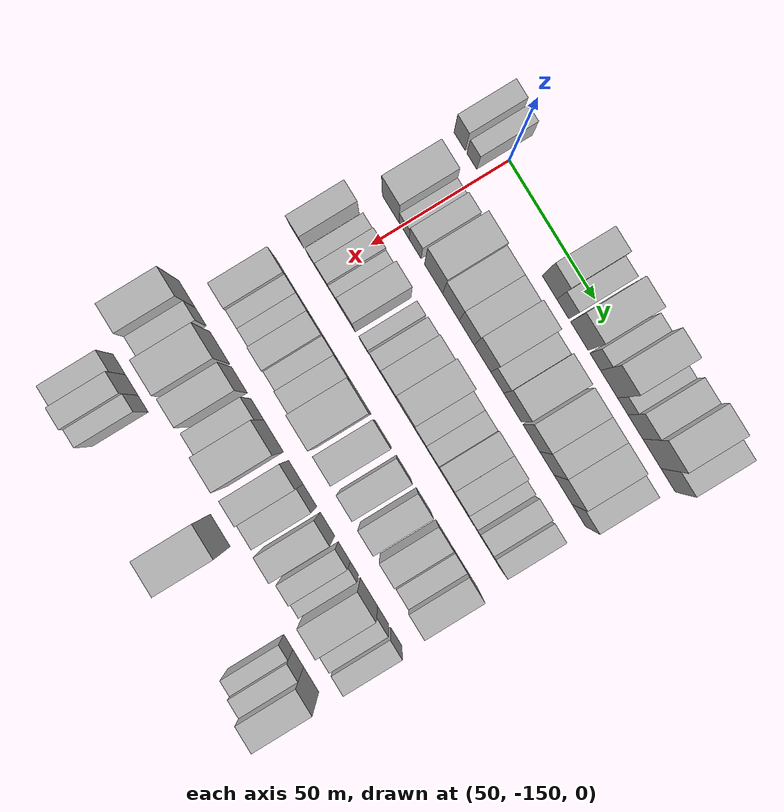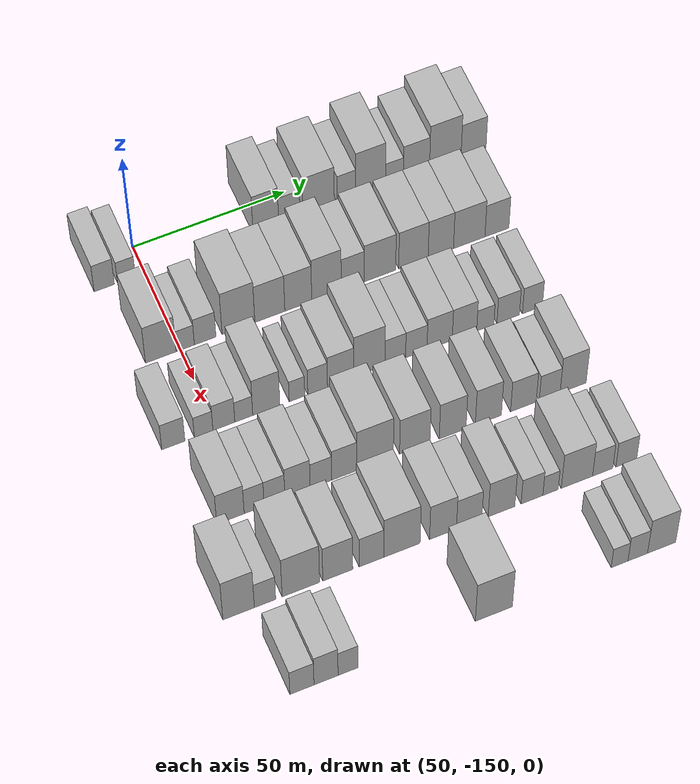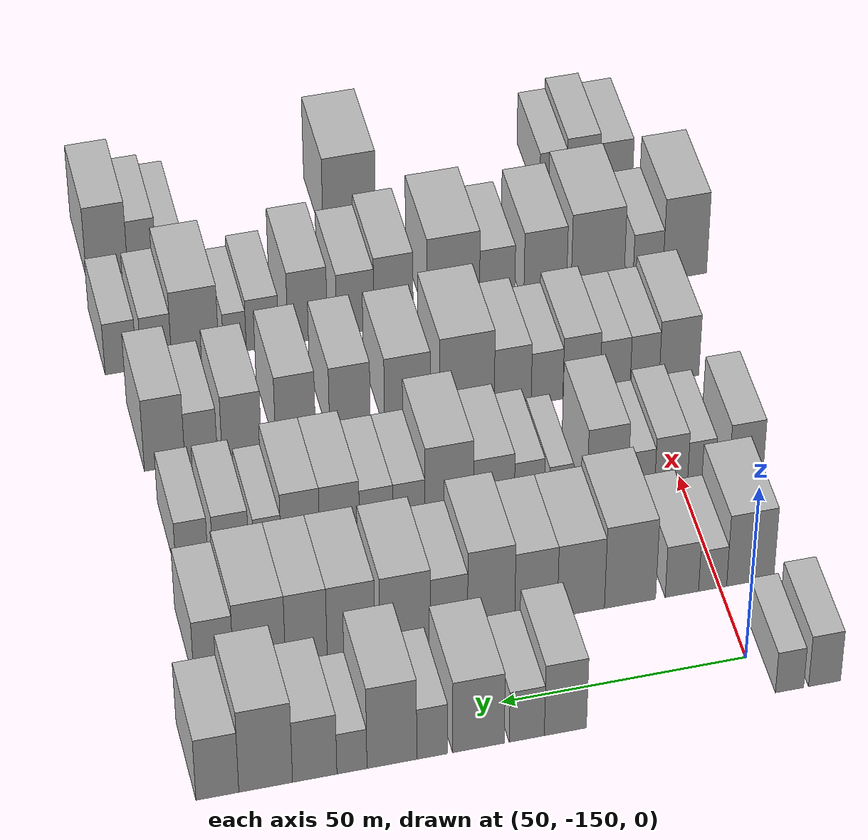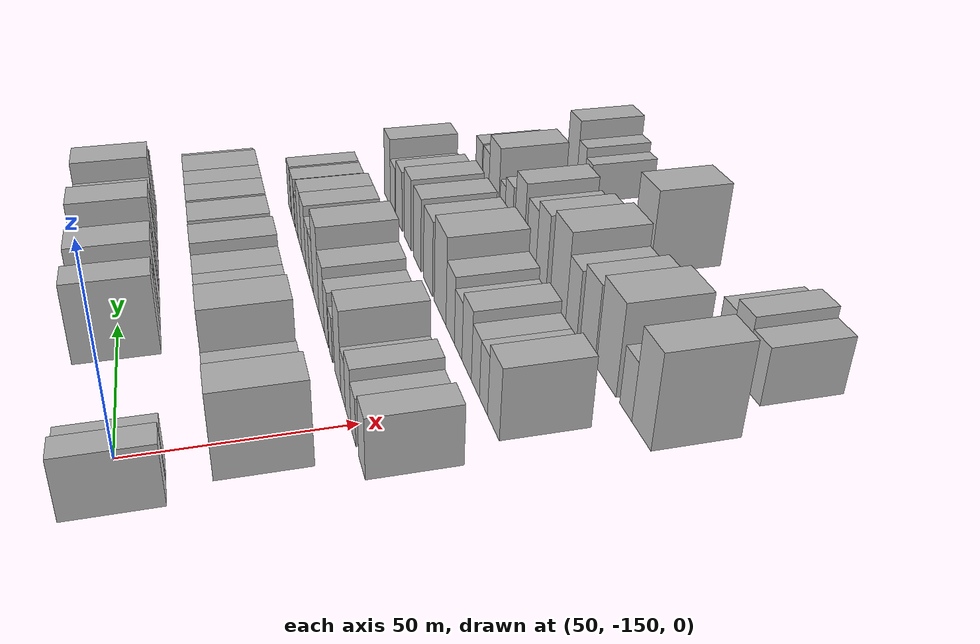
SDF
<sdf version="1.6">
 <world name="default">
  <model name="building_37">
   <static>1</static>
   <pose>50.0000 -163.1024 0 0.000000 0.000000 0.000000</pose>
   <link name="link">
    <pose>0 0 7.50 0 0 0</pose>
    <collision name="collision"><geometry><box><size>20.0000 6.5615 15.0000</size></box></geometry></collision>
    <visual name="visual">
     <cast_shadows>0</cast_shadows>
     <geometry><box><size>20.0000 6.5615 15.0000</size></box></geometry>
     <material>
      <script>
       <uri>model://HANNAS_wall/materials/scripts</uri>
       <uri>model://HANNAS_wall/materials/textures</uri>
       <name>vrc/HANNAS_wall</name>
      </script>
     </material>
    </visual>
   </link>
  </model>
  <model name="building_38">
   <static>1</static>
   <pose>50.0000 -155.9219 0 0.000000 0.000000 0.000000</pose>
   <link name="link">
    <pose>0 0 6.00 0 0 0</pose>
    <collision name="collision"><geometry><box><size>20.0000 5.7995 12.0000</size></box></geometry></collision>
    <visual name="visual">
     <cast_shadows>0</cast_shadows>
     <geometry><box><size>20.0000 5.7995 12.0000</size></box></geometry>
     <material>
      <script>
       <uri>model://HANNAS_wall/materials/scripts</uri>
       <uri>model://HANNAS_wall/materials/textures</uri>
       <name>vrc/HANNAS_wall</name>
      </script>
     </material>
    </visual>
   </link>
  </model>
  <model name="building_39">
   <static>1</static>
   <pose>50.0000 -110.2838 0 0.000000 0.000000 0.000000</pose>
   <link name="link">
    <pose>0 0 10.50 0 0 0</pose>
    <collision name="collision"><geometry><box><size>20.0000 8.4922 21.0000</size></box></geometry></collision>
    <visual name="visual">
     <cast_shadows>0</cast_shadows>
     <geometry><box><size>20.0000 8.4922 21.0000</size></box></geometry>
     <material>
      <script>
       <uri>model://HANNAS_wall/materials/scripts</uri>
       <uri>model://HANNAS_wall/materials/textures</uri>
       <name>vrc/HANNAS_wall</name>
      </script>
     </material>
    </visual>
   </link>
  </model>
  <model name="building_40">
   <static>1</static>
   <pose>50.0000 -102.5081 0 0.000000 0.000000 0.000000</pose>
   <link name="link">
    <pose>0 0 7.50 0 0 0</pose>
    <collision name="collision"><geometry><box><size>20.0000 7.0591 15.0000</size></box></geometry></collision>
    <visual name="visual">
     <cast_shadows>0</cast_shadows>
     <geometry><box><size>20.0000 7.0591 15.0000</size></box></geometry>
     <material>
      <script>
       <uri>model://HANNAS_wall/materials/scripts</uri>
       <uri>model://HANNAS_wall/materials/textures</uri>
       <name>vrc/HANNAS_wall</name>
      </script>
     </material>
    </visual>
   </link>
  </model>
  <model name="building_41">
   <static>1</static>
   <pose>50.0000 -92.8008 0 0.000000 0.000000 0.000000</pose>
   <link name="link">
    <pose>0 0 10.50 0 0 0</pose>
    <collision name="collision"><geometry><box><size>20.0000 10.3556 21.0000</size></box></geometry></collision>
    <visual name="visual">
     <cast_shadows>0</cast_shadows>
     <geometry><box><size>20.0000 10.3556 21.0000</size></box></geometry>
     <material>
      <script>
       <uri>model://HANNAS_wall/materials/scripts</uri>
       <uri>model://HANNAS_wall/materials/textures</uri>
       <name>vrc/HANNAS_wall</name>
      </script>
     </material>
    </visual>
   </link>
  </model>
  <model name="building_42">
   <static>1</static>
   <pose>50.0000 -83.5438 0 0.000000 0.000000 0.000000</pose>
   <link name="link">
    <pose>0 0 7.50 0 0 0</pose>
    <collision name="collision"><geometry><box><size>20.0000 6.1586 15.0000</size></box></geometry></collision>
    <visual name="visual">
     <cast_shadows>0</cast_shadows>
     <geometry><box><size>20.0000 6.1586 15.0000</size></box></geometry>
     <material>
      <script>
       <uri>model://HANNAS_wall/materials/scripts</uri>
       <uri>model://HANNAS_wall/materials/textures</uri>
       <name>vrc/HANNAS_wall</name>
      </script>
     </material>
    </visual>
   </link>
  </model>
  <model name="building_43">
   <static>1</static>
   <pose>50.0000 -75.5040 0 0.000000 0.000000 0.000000</pose>
   <link name="link">
    <pose>0 0 12.00 0 0 0</pose>
    <collision name="collision"><geometry><box><size>20.0000 9.9208 24.0000</size></box></geometry></collision>
    <visual name="visual">
     <cast_shadows>0</cast_shadows>
     <geometry><box><size>20.0000 9.9208 24.0000</size></box></geometry>
     <material>
      <script>
       <uri>model://HANNAS_wall/materials/scripts</uri>
       <uri>model://HANNAS_wall/materials/textures</uri>
       <name>vrc/HANNAS_wall</name>
      </script>
     </material>
    </visual>
   </link>
  </model>
  <model name="building_44">
   <static>1</static>
   <pose>50.0000 -67.5569 0 0.000000 0.000000 0.000000</pose>
   <link name="link">
    <pose>0 0 6.00 0 0 0</pose>
    <collision name="collision"><geometry><box><size>20.0000 5.9735 12.0000</size></box></geometry></collision>
    <visual name="visual">
     <cast_shadows>0</cast_shadows>
     <geometry><box><size>20.0000 5.9735 12.0000</size></box></geometry>
     <material>
      <script>
       <uri>model://HANNAS_wall/materials/scripts</uri>
       <uri>model://HANNAS_wall/materials/textures</uri>
       <name>vrc/HANNAS_wall</name>
      </script>
     </material>
    </visual>
   </link>
  </model>
  <model name="building_45">
   <static>1</static>
   <pose>50.0000 -60.1792 0 0.000000 0.000000 0.000000</pose>
   <link name="link">
    <pose>0 0 9.00 0 0 0</pose>
    <collision name="collision"><geometry><box><size>20.0000 8.7819 18.0000</size></box></geometry></collision>
    <visual name="visual">
     <cast_shadows>0</cast_shadows>
     <geometry><box><size>20.0000 8.7819 18.0000</size></box></geometry>
     <material>
      <script>
       <uri>model://HANNAS_wall/materials/scripts</uri>
       <uri>model://HANNAS_wall/materials/textures</uri>
       <name>vrc/HANNAS_wall</name>
      </script>
     </material>
    </visual>
   </link>
  </model>
  <model name="building_46">
   <static>1</static>
   <pose>50.0000 -50.4802 0 0.000000 0.000000 0.000000</pose>
   <link name="link">
    <pose>0 0 12.00 0 0 0</pose>
    <collision name="collision"><geometry><box><size>20.0000 10.6159 24.0000</size></box></geometry></collision>
    <visual name="visual">
     <cast_shadows>0</cast_shadows>
     <geometry><box><size>20.0000 10.6159 24.0000</size></box></geometry>
     <material>
      <script>
       <uri>model://HANNAS_wall/materials/scripts</uri>
       <uri>model://HANNAS_wall/materials/textures</uri>
       <name>vrc/HANNAS_wall</name>
      </script>
     </material>
    </visual>
   </link>
  </model>
  <model name="building_47">
   <static>1</static>
   <pose>50.0000 -40.9504 0 0.000000 0.000000 0.000000</pose>
   <link name="link">
    <pose>0 0 9.00 0 0 0</pose>
    <collision name="collision"><geometry><box><size>20.0000 8.4437 18.0000</size></box></geometry></collision>
    <visual name="visual">
     <cast_shadows>0</cast_shadows>
     <geometry><box><size>20.0000 8.4437 18.0000</size></box></geometry>
     <material>
      <script>
       <uri>model://HANNAS_wall/materials/scripts</uri>
       <uri>model://HANNAS_wall/materials/textures</uri>
       <name>vrc/HANNAS_wall</name>
      </script>
     </material>
    </visual>
   </link>
  </model>
  <model name="building_147">
   <static>1</static>
   <pose>79.0000 -156.2502 0 0.000000 0.000000 0.000000</pose>
   <link name="link">
    <pose>0 0 10.50 0 0 0</pose>
    <collision name="collision"><geometry><box><size>20.0000 9.8733 21.0000</size></box></geometry></collision>
    <visual name="visual">
     <cast_shadows>0</cast_shadows>
     <geometry><box><size>20.0000 9.8733 21.0000</size></box></geometry>
     <material>
      <script>
       <uri>model://HANNAS_wall/materials/scripts</uri>
       <uri>model://HANNAS_wall/materials/textures</uri>
       <name>vrc/HANNAS_wall</name>
      </script>
     </material>
    </visual>
   </link>
  </model>
  <model name="building_148">
   <static>1</static>
   <pose>79.0000 -148.3791 0 0.000000 0.000000 0.000000</pose>
   <link name="link">
    <pose>0 0 6.00 0 0 0</pose>
    <collision name="collision"><geometry><box><size>20.0000 5.8688 12.0000</size></box></geometry></collision>
    <visual name="visual">
     <cast_shadows>0</cast_shadows>
     <geometry><box><size>20.0000 5.8688 12.0000</size></box></geometry>
     <material>
      <script>
       <uri>model://HANNAS_wall/materials/scripts</uri>
       <uri>model://HANNAS_wall/materials/textures</uri>
       <name>vrc/HANNAS_wall</name>
      </script>
     </material>
    </visual>
   </link>
  </model>
  <model name="building_149">
   <static>1</static>
   <pose>79.0000 -141.9676 0 0.000000 0.000000 0.000000</pose>
   <link name="link">
    <pose>0 0 7.50 0 0 0</pose>
    <collision name="collision"><geometry><box><size>20.0000 6.9543 15.0000</size></box></geometry></collision>
    <visual name="visual">
     <cast_shadows>0</cast_shadows>
     <geometry><box><size>20.0000 6.9543 15.0000</size></box></geometry>
     <material>
      <script>
       <uri>model://HANNAS_wall/materials/scripts</uri>
       <uri>model://HANNAS_wall/materials/textures</uri>
       <name>vrc/HANNAS_wall</name>
      </script>
     </material>
    </visual>
   </link>
  </model>
  <model name="building_150">
   <static>1</static>
   <pose>79.0000 -131.1837 0 0.000000 0.000000 0.000000</pose>
   <link name="link">
    <pose>0 0 12.00 0 0 0</pose>
    <collision name="collision"><geometry><box><size>20.0000 10.6135 24.0000</size></box></geometry></collision>
    <visual name="visual">
     <cast_shadows>0</cast_shadows>
     <geometry><box><size>20.0000 10.6135 24.0000</size></box></geometry>
     <material>
      <script>
       <uri>model://HANNAS_wall/materials/scripts</uri>
       <uri>model://HANNAS_wall/materials/textures</uri>
       <name>vrc/HANNAS_wall</name>
      </script>
     </material>
    </visual>
   </link>
  </model>
  <model name="building_151">
   <static>1</static>
   <pose>79.0000 -120.9913 0 0.000000 0.000000 0.000000</pose>
   <link name="link">
    <pose>0 0 10.50 0 0 0</pose>
    <collision name="collision"><geometry><box><size>20.0000 9.7712 21.0000</size></box></geometry></collision>
    <visual name="visual">
     <cast_shadows>0</cast_shadows>
     <geometry><box><size>20.0000 9.7712 21.0000</size></box></geometry>
     <material>
      <script>
       <uri>model://HANNAS_wall/materials/scripts</uri>
       <uri>model://HANNAS_wall/materials/textures</uri>
       <name>vrc/HANNAS_wall</name>
      </script>
     </material>
    </visual>
   </link>
  </model>
  <model name="building_152">
   <static>1</static>
   <pose>79.0000 -111.7126 0 0.000000 0.000000 0.000000</pose>
   <link name="link">
    <pose>0 0 10.50 0 0 0</pose>
    <collision name="collision"><geometry><box><size>20.0000 8.7863 21.0000</size></box></geometry></collision>
    <visual name="visual">
     <cast_shadows>0</cast_shadows>
     <geometry><box><size>20.0000 8.7863 21.0000</size></box></geometry>
     <material>
      <script>
       <uri>model://HANNAS_wall/materials/scripts</uri>
       <uri>model://HANNAS_wall/materials/textures</uri>
       <name>vrc/HANNAS_wall</name>
      </script>
     </material>
    </visual>
   </link>
  </model>
  <model name="building_153">
   <static>1</static>
   <pose>79.0000 -102.4825 0 0.000000 0.000000 0.000000</pose>
   <link name="link">
    <pose>0 0 12.00 0 0 0</pose>
    <collision name="collision"><geometry><box><size>20.0000 9.6740 24.0000</size></box></geometry></collision>
    <visual name="visual">
     <cast_shadows>0</cast_shadows>
     <geometry><box><size>20.0000 9.6740 24.0000</size></box></geometry>
     <material>
      <script>
       <uri>model://HANNAS_wall/materials/scripts</uri>
       <uri>model://HANNAS_wall/materials/textures</uri>
       <name>vrc/HANNAS_wall</name>
      </script>
     </material>
    </visual>
   </link>
  </model>
  <model name="building_154">
   <static>1</static>
   <pose>79.0000 -93.8683 0 0.000000 0.000000 0.000000</pose>
   <link name="link">
    <pose>0 0 9.00 0 0 0</pose>
    <collision name="collision"><geometry><box><size>20.0000 7.5544 18.0000</size></box></geometry></collision>
    <visual name="visual">
     <cast_shadows>0</cast_shadows>
     <geometry><box><size>20.0000 7.5544 18.0000</size></box></geometry>
     <material>
      <script>
       <uri>model://HANNAS_wall/materials/scripts</uri>
       <uri>model://HANNAS_wall/materials/textures</uri>
       <name>vrc/HANNAS_wall</name>
      </script>
     </material>
    </visual>
   </link>
  </model>
  <model name="building_155">
   <static>1</static>
   <pose>79.0000 -84.9221 0 0.000000 0.000000 0.000000</pose>
   <link name="link">
    <pose>0 0 10.50 0 0 0</pose>
    <collision name="collision"><geometry><box><size>20.0000 10.3380 21.0000</size></box></geometry></collision>
    <visual name="visual">
     <cast_shadows>0</cast_shadows>
     <geometry><box><size>20.0000 10.3380 21.0000</size></box></geometry>
     <material>
      <script>
       <uri>model://HANNAS_wall/materials/scripts</uri>
       <uri>model://HANNAS_wall/materials/textures</uri>
       <name>vrc/HANNAS_wall</name>
      </script>
     </material>
    </visual>
   </link>
  </model>
  <model name="building_156">
   <static>1</static>
   <pose>79.0000 -73.8967 0 0.000000 0.000000 0.000000</pose>
   <link name="link">
    <pose>0 0 10.50 0 0 0</pose>
    <collision name="collision"><geometry><box><size>20.0000 9.7129 21.0000</size></box></geometry></collision>
    <visual name="visual">
     <cast_shadows>0</cast_shadows>
     <geometry><box><size>20.0000 9.7129 21.0000</size></box></geometry>
     <material>
      <script>
       <uri>model://HANNAS_wall/materials/scripts</uri>
       <uri>model://HANNAS_wall/materials/textures</uri>
       <name>vrc/HANNAS_wall</name>
      </script>
     </material>
    </visual>
   </link>
  </model>
  <model name="building_157">
   <static>1</static>
   <pose>79.0000 -64.8223 0 0.000000 0.000000 0.000000</pose>
   <link name="link">
    <pose>0 0 10.50 0 0 0</pose>
    <collision name="collision"><geometry><box><size>20.0000 8.4360 21.0000</size></box></geometry></collision>
    <visual name="visual">
     <cast_shadows>0</cast_shadows>
     <geometry><box><size>20.0000 8.4360 21.0000</size></box></geometry>
     <material>
      <script>
       <uri>model://HANNAS_wall/materials/scripts</uri>
       <uri>model://HANNAS_wall/materials/textures</uri>
       <name>vrc/HANNAS_wall</name>
      </script>
     </material>
    </visual>
   </link>
  </model>
  <model name="building_158">
   <static>1</static>
   <pose>79.0000 -55.3665 0 0.000000 0.000000 0.000000</pose>
   <link name="link">
    <pose>0 0 10.50 0 0 0</pose>
    <collision name="collision"><geometry><box><size>20.0000 10.4754 21.0000</size></box></geometry></collision>
    <visual name="visual">
     <cast_shadows>0</cast_shadows>
     <geometry><box><size>20.0000 10.4754 21.0000</size></box></geometry>
     <material>
      <script>
       <uri>model://HANNAS_wall/materials/scripts</uri>
       <uri>model://HANNAS_wall/materials/textures</uri>
       <name>vrc/HANNAS_wall</name>
      </script>
     </material>
    </visual>
   </link>
  </model>
  <model name="building_159">
   <static>1</static>
   <pose>79.0000 -46.1332 0 0.000000 0.000000 0.000000</pose>
   <link name="link">
    <pose>0 0 9.00 0 0 0</pose>
    <collision name="collision"><geometry><box><size>20.0000 7.9913 18.0000</size></box></geometry></collision>
    <visual name="visual">
     <cast_shadows>0</cast_shadows>
     <geometry><box><size>20.0000 7.9913 18.0000</size></box></geometry>
     <material>
      <script>
       <uri>model://HANNAS_wall/materials/scripts</uri>
       <uri>model://HANNAS_wall/materials/textures</uri>
       <name>vrc/HANNAS_wall</name>
      </script>
     </material>
    </visual>
   </link>
  </model>
  <model name="building_255">
   <static>1</static>
   <pose>108.0000 -163.7777 0 0.000000 0.000000 0.000000</pose>
   <link name="link">
    <pose>0 0 7.50 0 0 0</pose>
    <collision name="collision"><geometry><box><size>20.0000 7.3350 15.0000</size></box></geometry></collision>
    <visual name="visual">
     <cast_shadows>0</cast_shadows>
     <geometry><box><size>20.0000 7.3350 15.0000</size></box></geometry>
     <material>
      <script>
       <uri>model://HANNAS_wall/materials/scripts</uri>
       <uri>model://HANNAS_wall/materials/textures</uri>
       <name>vrc/HANNAS_wall</name>
      </script>
     </material>
    </visual>
   </link>
  </model>
  <model name="building_256">
   <static>1</static>
   <pose>108.0000 -154.1662 0 0.000000 0.000000 0.000000</pose>
   <link name="link">
    <pose>0 0 6.00 0 0 0</pose>
    <collision name="collision"><geometry><box><size>20.0000 5.8882 12.0000</size></box></geometry></collision>
    <visual name="visual">
     <cast_shadows>0</cast_shadows>
     <geometry><box><size>20.0000 5.8882 12.0000</size></box></geometry>
     <material>
      <script>
       <uri>model://HANNAS_wall/materials/scripts</uri>
       <uri>model://HANNAS_wall/materials/textures</uri>
       <name>vrc/HANNAS_wall</name>
      </script>
     </material>
    </visual>
   </link>
  </model>
  <model name="building_257">
   <static>1</static>
   <pose>108.0000 -147.7206 0 0.000000 0.000000 0.000000</pose>
   <link name="link">
    <pose>0 0 7.50 0 0 0</pose>
    <collision name="collision"><geometry><box><size>20.0000 7.0030 15.0000</size></box></geometry></collision>
    <visual name="visual">
     <cast_shadows>0</cast_shadows>
     <geometry><box><size>20.0000 7.0030 15.0000</size></box></geometry>
     <material>
      <script>
       <uri>model://HANNAS_wall/materials/scripts</uri>
       <uri>model://HANNAS_wall/materials/textures</uri>
       <name>vrc/HANNAS_wall</name>
      </script>
     </material>
    </visual>
   </link>
  </model>
  <model name="building_258">
   <static>1</static>
   <pose>108.0000 -141.3519 0 0.000000 0.000000 0.000000</pose>
   <link name="link">
    <pose>0 0 6.00 0 0 0</pose>
    <collision name="collision"><geometry><box><size>20.0000 5.7342 12.0000</size></box></geometry></collision>
    <visual name="visual">
     <cast_shadows>0</cast_shadows>
     <geometry><box><size>20.0000 5.7342 12.0000</size></box></geometry>
     <material>
      <script>
       <uri>model://HANNAS_wall/materials/scripts</uri>
       <uri>model://HANNAS_wall/materials/textures</uri>
       <name>vrc/HANNAS_wall</name>
      </script>
     </material>
    </visual>
   </link>
  </model>
  <model name="building_259">
   <static>1</static>
   <pose>108.0000 -134.1454 0 0.000000 0.000000 0.000000</pose>
   <link name="link">
    <pose>0 0 10.50 0 0 0</pose>
    <collision name="collision"><geometry><box><size>20.0000 8.6790 21.0000</size></box></geometry></collision>
    <visual name="visual">
     <cast_shadows>0</cast_shadows>
     <geometry><box><size>20.0000 8.6790 21.0000</size></box></geometry>
     <material>
      <script>
       <uri>model://HANNAS_wall/materials/scripts</uri>
       <uri>model://HANNAS_wall/materials/textures</uri>
       <name>vrc/HANNAS_wall</name>
      </script>
     </material>
    </visual>
   </link>
  </model>
  <model name="building_260">
   <static>1</static>
   <pose>108.0000 -124.3145 0 0.000000 0.000000 0.000000</pose>
   <link name="link">
    <pose>0 0 6.00 0 0 0</pose>
    <collision name="collision"><geometry><box><size>20.0000 4.9828 12.0000</size></box></geometry></collision>
    <visual name="visual">
     <cast_shadows>0</cast_shadows>
     <geometry><box><size>20.0000 4.9828 12.0000</size></box></geometry>
     <material>
      <script>
       <uri>model://HANNAS_wall/materials/scripts</uri>
       <uri>model://HANNAS_wall/materials/textures</uri>
       <name>vrc/HANNAS_wall</name>
      </script>
     </material>
    </visual>
   </link>
  </model>
  <model name="building_261">
   <static>1</static>
   <pose>108.0000 -117.6529 0 0.000000 0.000000 0.000000</pose>
   <link name="link">
    <pose>0 0 7.50 0 0 0</pose>
    <collision name="collision"><geometry><box><size>20.0000 6.3403 15.0000</size></box></geometry></collision>
    <visual name="visual">
     <cast_shadows>0</cast_shadows>
     <geometry><box><size>20.0000 6.3403 15.0000</size></box></geometry>
     <material>
      <script>
       <uri>model://HANNAS_wall/materials/scripts</uri>
       <uri>model://HANNAS_wall/materials/textures</uri>
       <name>vrc/HANNAS_wall</name>
      </script>
     </material>
    </visual>
   </link>
  </model>
  <model name="building_262">
   <static>1</static>
   <pose>108.0000 -110.2020 0 0.000000 0.000000 0.000000</pose>
   <link name="link">
    <pose>0 0 9.00 0 0 0</pose>
    <collision name="collision"><geometry><box><size>20.0000 8.5617 18.0000</size></box></geometry></collision>
    <visual name="visual">
     <cast_shadows>0</cast_shadows>
     <geometry><box><size>20.0000 8.5617 18.0000</size></box></geometry>
     <material>
      <script>
       <uri>model://HANNAS_wall/materials/scripts</uri>
       <uri>model://HANNAS_wall/materials/textures</uri>
       <name>vrc/HANNAS_wall</name>
      </script>
     </material>
    </visual>
   </link>
  </model>
  <model name="building_263">
   <static>1</static>
   <pose>108.0000 -100.8691 0 0.000000 0.000000 0.000000</pose>
   <link name="link">
    <pose>0 0 12.00 0 0 0</pose>
    <collision name="collision"><geometry><box><size>20.0000 10.1041 24.0000</size></box></geometry></collision>
    <visual name="visual">
     <cast_shadows>0</cast_shadows>
     <geometry><box><size>20.0000 10.1041 24.0000</size></box></geometry>
     <material>
      <script>
       <uri>model://HANNAS_wall/materials/scripts</uri>
       <uri>model://HANNAS_wall/materials/textures</uri>
       <name>vrc/HANNAS_wall</name>
      </script>
     </material>
    </visual>
   </link>
  </model>
  <model name="building_264">
   <static>1</static>
   <pose>108.0000 -92.4848 0 0.000000 0.000000 0.000000</pose>
   <link name="link">
    <pose>0 0 7.50 0 0 0</pose>
    <collision name="collision"><geometry><box><size>20.0000 6.6645 15.0000</size></box></geometry></collision>
    <visual name="visual">
     <cast_shadows>0</cast_shadows>
     <geometry><box><size>20.0000 6.6645 15.0000</size></box></geometry>
     <material>
      <script>
       <uri>model://HANNAS_wall/materials/scripts</uri>
       <uri>model://HANNAS_wall/materials/textures</uri>
       <name>vrc/HANNAS_wall</name>
      </script>
     </material>
    </visual>
   </link>
  </model>
  <model name="building_265">
   <static>1</static>
   <pose>108.0000 -85.6633 0 0.000000 0.000000 0.000000</pose>
   <link name="link">
    <pose>0 0 7.50 0 0 0</pose>
    <collision name="collision"><geometry><box><size>20.0000 6.9785 15.0000</size></box></geometry></collision>
    <visual name="visual">
     <cast_shadows>0</cast_shadows>
     <geometry><box><size>20.0000 6.9785 15.0000</size></box></geometry>
     <material>
      <script>
       <uri>model://HANNAS_wall/materials/scripts</uri>
       <uri>model://HANNAS_wall/materials/textures</uri>
       <name>vrc/HANNAS_wall</name>
      </script>
     </material>
    </visual>
   </link>
  </model>
  <model name="building_266">
   <static>1</static>
   <pose>108.0000 -78.0405 0 0.000000 0.000000 0.000000</pose>
   <link name="link">
    <pose>0 0 9.00 0 0 0</pose>
    <collision name="collision"><geometry><box><size>20.0000 8.2671 18.0000</size></box></geometry></collision>
    <visual name="visual">
     <cast_shadows>0</cast_shadows>
     <geometry><box><size>20.0000 8.2671 18.0000</size></box></geometry>
     <material>
      <script>
       <uri>model://HANNAS_wall/materials/scripts</uri>
       <uri>model://HANNAS_wall/materials/textures</uri>
       <name>vrc/HANNAS_wall</name>
      </script>
     </material>
    </visual>
   </link>
  </model>
  <model name="building_267">
   <static>1</static>
   <pose>108.0000 -69.8983 0 0.000000 0.000000 0.000000</pose>
   <link name="link">
    <pose>0 0 9.00 0 0 0</pose>
    <collision name="collision"><geometry><box><size>20.0000 8.0172 18.0000</size></box></geometry></collision>
    <visual name="visual">
     <cast_shadows>0</cast_shadows>
     <geometry><box><size>20.0000 8.0172 18.0000</size></box></geometry>
     <material>
      <script>
       <uri>model://HANNAS_wall/materials/scripts</uri>
       <uri>model://HANNAS_wall/materials/textures</uri>
       <name>vrc/HANNAS_wall</name>
      </script>
     </material>
    </visual>
   </link>
  </model>
  <model name="building_268">
   <static>1</static>
   <pose>108.0000 -63.0604 0 0.000000 0.000000 0.000000</pose>
   <link name="link">
    <pose>0 0 6.00 0 0 0</pose>
    <collision name="collision"><geometry><box><size>20.0000 5.6585 12.0000</size></box></geometry></collision>
    <visual name="visual">
     <cast_shadows>0</cast_shadows>
     <geometry><box><size>20.0000 5.6585 12.0000</size></box></geometry>
     <material>
      <script>
       <uri>model://HANNAS_wall/materials/scripts</uri>
       <uri>model://HANNAS_wall/materials/textures</uri>
       <name>vrc/HANNAS_wall</name>
      </script>
     </material>
    </visual>
   </link>
  </model>
  <model name="building_269">
   <static>1</static>
   <pose>108.0000 -55.5255 0 0.000000 0.000000 0.000000</pose>
   <link name="link">
    <pose>0 0 7.50 0 0 0</pose>
    <collision name="collision"><geometry><box><size>20.0000 7.4113 15.0000</size></box></geometry></collision>
    <visual name="visual">
     <cast_shadows>0</cast_shadows>
     <geometry><box><size>20.0000 7.4113 15.0000</size></box></geometry>
     <material>
      <script>
       <uri>model://HANNAS_wall/materials/scripts</uri>
       <uri>model://HANNAS_wall/materials/textures</uri>
       <name>vrc/HANNAS_wall</name>
      </script>
     </material>
    </visual>
   </link>
  </model>
  <model name="building_270">
   <static>1</static>
   <pose>108.0000 -47.5194 0 0.000000 0.000000 0.000000</pose>
   <link name="link">
    <pose>0 0 7.50 0 0 0</pose>
    <collision name="collision"><geometry><box><size>20.0000 6.6009 15.0000</size></box></geometry></collision>
    <visual name="visual">
     <cast_shadows>0</cast_shadows>
     <geometry><box><size>20.0000 6.6009 15.0000</size></box></geometry>
     <material>
      <script>
       <uri>model://HANNAS_wall/materials/scripts</uri>
       <uri>model://HANNAS_wall/materials/textures</uri>
       <name>vrc/HANNAS_wall</name>
      </script>
     </material>
    </visual>
   </link>
  </model>
  <model name="building_371">
   <static>1</static>
   <pose>137.0000 -157.4521 0 0.000000 0.000000 0.000000</pose>
   <link name="link">
    <pose>0 0 9.00 0 0 0</pose>
    <collision name="collision"><geometry><box><size>20.0000 8.6396 18.0000</size></box></geometry></collision>
    <visual name="visual">
     <cast_shadows>0</cast_shadows>
     <geometry><box><size>20.0000 8.6396 18.0000</size></box></geometry>
     <material>
      <script>
       <uri>model://HANNAS_wall/materials/scripts</uri>
       <uri>model://HANNAS_wall/materials/textures</uri>
       <name>vrc/HANNAS_wall</name>
      </script>
     </material>
    </visual>
   </link>
  </model>
  <model name="building_372">
   <static>1</static>
   <pose>137.0000 -149.9780 0 0.000000 0.000000 0.000000</pose>
   <link name="link">
    <pose>0 0 7.50 0 0 0</pose>
    <collision name="collision"><geometry><box><size>20.0000 6.3086 15.0000</size></box></geometry></collision>
    <visual name="visual">
     <cast_shadows>0</cast_shadows>
     <geometry><box><size>20.0000 6.3086 15.0000</size></box></geometry>
     <material>
      <script>
       <uri>model://HANNAS_wall/materials/scripts</uri>
       <uri>model://HANNAS_wall/materials/textures</uri>
       <name>vrc/HANNAS_wall</name>
      </script>
     </material>
    </visual>
   </link>
  </model>
  <model name="building_373">
   <static>1</static>
   <pose>137.0000 -143.5416 0 0.000000 0.000000 0.000000</pose>
   <link name="link">
    <pose>0 0 7.50 0 0 0</pose>
    <collision name="collision"><geometry><box><size>20.0000 6.5640 15.0000</size></box></geometry></collision>
    <visual name="visual">
     <cast_shadows>0</cast_shadows>
     <geometry><box><size>20.0000 6.5640 15.0000</size></box></geometry>
     <material>
      <script>
       <uri>model://HANNAS_wall/materials/scripts</uri>
       <uri>model://HANNAS_wall/materials/textures</uri>
       <name>vrc/HANNAS_wall</name>
      </script>
     </material>
    </visual>
   </link>
  </model>
  <model name="building_374">
   <static>1</static>
   <pose>137.0000 -136.2545 0 0.000000 0.000000 0.000000</pose>
   <link name="link">
    <pose>0 0 9.00 0 0 0</pose>
    <collision name="collision"><geometry><box><size>20.0000 8.0102 18.0000</size></box></geometry></collision>
    <visual name="visual">
     <cast_shadows>0</cast_shadows>
     <geometry><box><size>20.0000 8.0102 18.0000</size></box></geometry>
     <material>
      <script>
       <uri>model://HANNAS_wall/materials/scripts</uri>
       <uri>model://HANNAS_wall/materials/textures</uri>
       <name>vrc/HANNAS_wall</name>
      </script>
     </material>
    </visual>
   </link>
  </model>
  <model name="building_375">
   <static>1</static>
   <pose>137.0000 -128.8315 0 0.000000 0.000000 0.000000</pose>
   <link name="link">
    <pose>0 0 7.50 0 0 0</pose>
    <collision name="collision"><geometry><box><size>20.0000 6.8358 15.0000</size></box></geometry></collision>
    <visual name="visual">
     <cast_shadows>0</cast_shadows>
     <geometry><box><size>20.0000 6.8358 15.0000</size></box></geometry>
     <material>
      <script>
       <uri>model://HANNAS_wall/materials/scripts</uri>
       <uri>model://HANNAS_wall/materials/textures</uri>
       <name>vrc/HANNAS_wall</name>
      </script>
     </material>
    </visual>
   </link>
  </model>
  <model name="building_376">
   <static>1</static>
   <pose>137.0000 -121.4394 0 0.000000 0.000000 0.000000</pose>
   <link name="link">
    <pose>0 0 9.00 0 0 0</pose>
    <collision name="collision"><geometry><box><size>20.0000 7.9485 18.0000</size></box></geometry></collision>
    <visual name="visual">
     <cast_shadows>0</cast_shadows>
     <geometry><box><size>20.0000 7.9485 18.0000</size></box></geometry>
     <material>
      <script>
       <uri>model://HANNAS_wall/materials/scripts</uri>
       <uri>model://HANNAS_wall/materials/textures</uri>
       <name>vrc/HANNAS_wall</name>
      </script>
     </material>
    </visual>
   </link>
  </model>
  <model name="building_377">
   <static>1</static>
   <pose>137.0000 -111.6093 0 0.000000 0.000000 0.000000</pose>
   <link name="link">
    <pose>0 0 12.00 0 0 0</pose>
    <collision name="collision"><geometry><box><size>20.0000 11.7116 24.0000</size></box></geometry></collision>
    <visual name="visual">
     <cast_shadows>0</cast_shadows>
     <geometry><box><size>20.0000 11.7116 24.0000</size></box></geometry>
     <material>
      <script>
       <uri>model://HANNAS_wall/materials/scripts</uri>
       <uri>model://HANNAS_wall/materials/textures</uri>
       <name>vrc/HANNAS_wall</name>
      </script>
     </material>
    </visual>
   </link>
  </model>
  <model name="building_378">
   <static>1</static>
   <pose>137.0000 -98.8764 0 0.000000 0.000000 0.000000</pose>
   <link name="link">
    <pose>0 0 10.50 0 0 0</pose>
    <collision name="collision"><geometry><box><size>20.0000 9.7542 21.0000</size></box></geometry></collision>
    <visual name="visual">
     <cast_shadows>0</cast_shadows>
     <geometry><box><size>20.0000 9.7542 21.0000</size></box></geometry>
     <material>
      <script>
       <uri>model://HANNAS_wall/materials/scripts</uri>
       <uri>model://HANNAS_wall/materials/textures</uri>
       <name>vrc/HANNAS_wall</name>
      </script>
     </material>
    </visual>
   </link>
  </model>
  <model name="building_379">
   <static>1</static>
   <pose>137.0000 -86.6756 0 0.000000 0.000000 0.000000</pose>
   <link name="link">
    <pose>0 0 10.50 0 0 0</pose>
    <collision name="collision"><geometry><box><size>20.0000 8.6474 21.0000</size></box></geometry></collision>
    <visual name="visual">
     <cast_shadows>0</cast_shadows>
     <geometry><box><size>20.0000 8.6474 21.0000</size></box></geometry>
     <material>
      <script>
       <uri>model://HANNAS_wall/materials/scripts</uri>
       <uri>model://HANNAS_wall/materials/textures</uri>
       <name>vrc/HANNAS_wall</name>
      </script>
     </material>
    </visual>
   </link>
  </model>
  <model name="building_380">
   <static>1</static>
   <pose>137.0000 -75.1296 0 0.000000 0.000000 0.000000</pose>
   <link name="link">
    <pose>0 0 10.50 0 0 0</pose>
    <collision name="collision"><geometry><box><size>20.0000 8.4447 21.0000</size></box></geometry></collision>
    <visual name="visual">
     <cast_shadows>0</cast_shadows>
     <geometry><box><size>20.0000 8.4447 21.0000</size></box></geometry>
     <material>
      <script>
       <uri>model://HANNAS_wall/materials/scripts</uri>
       <uri>model://HANNAS_wall/materials/textures</uri>
       <name>vrc/HANNAS_wall</name>
      </script>
     </material>
    </visual>
   </link>
  </model>
  <model name="building_381">
   <static>1</static>
   <pose>137.0000 -63.7361 0 0.000000 0.000000 0.000000</pose>
   <link name="link">
    <pose>0 0 9.00 0 0 0</pose>
    <collision name="collision"><geometry><box><size>20.0000 8.3423 18.0000</size></box></geometry></collision>
    <visual name="visual">
     <cast_shadows>0</cast_shadows>
     <geometry><box><size>20.0000 8.3423 18.0000</size></box></geometry>
     <material>
      <script>
       <uri>model://HANNAS_wall/materials/scripts</uri>
       <uri>model://HANNAS_wall/materials/textures</uri>
       <name>vrc/HANNAS_wall</name>
      </script>
     </material>
    </visual>
   </link>
  </model>
  <model name="building_382">
   <static>1</static>
   <pose>137.0000 -55.1581 0 0.000000 0.000000 0.000000</pose>
   <link name="link">
    <pose>0 0 7.50 0 0 0</pose>
    <collision name="collision"><geometry><box><size>20.0000 6.8136 15.0000</size></box></geometry></collision>
    <visual name="visual">
     <cast_shadows>0</cast_shadows>
     <geometry><box><size>20.0000 6.8136 15.0000</size></box></geometry>
     <material>
      <script>
       <uri>model://HANNAS_wall/materials/scripts</uri>
       <uri>model://HANNAS_wall/materials/textures</uri>
       <name>vrc/HANNAS_wall</name>
      </script>
     </material>
    </visual>
   </link>
  </model>
  <model name="building_383">
   <static>1</static>
   <pose>137.0000 -47.4960 0 0.000000 0.000000 0.000000</pose>
   <link name="link">
    <pose>0 0 10.50 0 0 0</pose>
    <collision name="collision"><geometry><box><size>20.0000 8.5106 21.0000</size></box></geometry></collision>
    <visual name="visual">
     <cast_shadows>0</cast_shadows>
     <geometry><box><size>20.0000 8.5106 21.0000</size></box></geometry>
     <material>
      <script>
       <uri>model://HANNAS_wall/materials/scripts</uri>
       <uri>model://HANNAS_wall/materials/textures</uri>
       <name>vrc/HANNAS_wall</name>
      </script>
     </material>
    </visual>
   </link>
  </model>
  <model name="building_485">
   <static>1</static>
   <pose>166.0000 -166.7563 0 0.000000 0.000000 0.000000</pose>
   <link name="link">
    <pose>0 0 12.00 0 0 0</pose>
    <collision name="collision"><geometry><box><size>20.0000 9.7724 24.0000</size></box></geometry></collision>
    <visual name="visual">
     <cast_shadows>0</cast_shadows>
     <geometry><box><size>20.0000 9.7724 24.0000</size></box></geometry>
     <material>
      <script>
       <uri>model://HANNAS_wall/materials/scripts</uri>
       <uri>model://HANNAS_wall/materials/textures</uri>
       <name>vrc/HANNAS_wall</name>
      </script>
     </material>
    </visual>
   </link>
  </model>
  <model name="building_486">
   <static>1</static>
   <pose>166.0000 -158.5510 0 0.000000 0.000000 0.000000</pose>
   <link name="link">
    <pose>0 0 7.50 0 0 0</pose>
    <collision name="collision"><geometry><box><size>20.0000 6.6384 15.0000</size></box></geometry></collision>
    <visual name="visual">
     <cast_shadows>0</cast_shadows>
     <geometry><box><size>20.0000 6.6384 15.0000</size></box></geometry>
     <material>
      <script>
       <uri>model://HANNAS_wall/materials/scripts</uri>
       <uri>model://HANNAS_wall/materials/textures</uri>
       <name>vrc/HANNAS_wall</name>
      </script>
     </material>
    </visual>
   </link>
  </model>
  <model name="building_487">
   <static>1</static>
   <pose>166.0000 -147.3763 0 0.000000 0.000000 0.000000</pose>
   <link name="link">
    <pose>0 0 12.00 0 0 0</pose>
    <collision name="collision"><geometry><box><size>20.0000 11.7110 24.0000</size></box></geometry></collision>
    <visual name="visual">
     <cast_shadows>0</cast_shadows>
     <geometry><box><size>20.0000 11.7110 24.0000</size></box></geometry>
     <material>
      <script>
       <uri>model://HANNAS_wall/materials/scripts</uri>
       <uri>model://HANNAS_wall/materials/textures</uri>
       <name>vrc/HANNAS_wall</name>
      </script>
     </material>
    </visual>
   </link>
  </model>
  <model name="building_488">
   <static>1</static>
   <pose>166.0000 -135.8223 0 0.000000 0.000000 0.000000</pose>
   <link name="link">
    <pose>0 0 10.50 0 0 0</pose>
    <collision name="collision"><geometry><box><size>20.0000 9.3969 21.0000</size></box></geometry></collision>
    <visual name="visual">
     <cast_shadows>0</cast_shadows>
     <geometry><box><size>20.0000 9.3969 21.0000</size></box></geometry>
     <material>
      <script>
       <uri>model://HANNAS_wall/materials/scripts</uri>
       <uri>model://HANNAS_wall/materials/textures</uri>
       <name>vrc/HANNAS_wall</name>
      </script>
     </material>
    </visual>
   </link>
  </model>
  <model name="building_489">
   <static>1</static>
   <pose>166.0000 -125.2606 0 0.000000 0.000000 0.000000</pose>
   <link name="link">
    <pose>0 0 9.00 0 0 0</pose>
    <collision name="collision"><geometry><box><size>20.0000 7.7266 18.0000</size></box></geometry></collision>
    <visual name="visual">
     <cast_shadows>0</cast_shadows>
     <geometry><box><size>20.0000 7.7266 18.0000</size></box></geometry>
     <material>
      <script>
       <uri>model://HANNAS_wall/materials/scripts</uri>
       <uri>model://HANNAS_wall/materials/textures</uri>
       <name>vrc/HANNAS_wall</name>
      </script>
     </material>
    </visual>
   </link>
  </model>
  <model name="building_490">
   <static>1</static>
   <pose>166.0000 -115.6424 0 0.000000 0.000000 0.000000</pose>
   <link name="link">
    <pose>0 0 12.00 0 0 0</pose>
    <collision name="collision"><geometry><box><size>20.0000 11.5097 24.0000</size></box></geometry></collision>
    <visual name="visual">
     <cast_shadows>0</cast_shadows>
     <geometry><box><size>20.0000 11.5097 24.0000</size></box></geometry>
     <material>
      <script>
       <uri>model://HANNAS_wall/materials/scripts</uri>
       <uri>model://HANNAS_wall/materials/textures</uri>
       <name>vrc/HANNAS_wall</name>
      </script>
     </material>
    </visual>
   </link>
  </model>
  <model name="building_491">
   <static>1</static>
   <pose>166.0000 -102.6228 0 0.000000 0.000000 0.000000</pose>
   <link name="link">
    <pose>0 0 10.50 0 0 0</pose>
    <collision name="collision"><geometry><box><size>20.0000 8.5295 21.0000</size></box></geometry></collision>
    <visual name="visual">
     <cast_shadows>0</cast_shadows>
     <geometry><box><size>20.0000 8.5295 21.0000</size></box></geometry>
     <material>
      <script>
       <uri>model://HANNAS_wall/materials/scripts</uri>
       <uri>model://HANNAS_wall/materials/textures</uri>
       <name>vrc/HANNAS_wall</name>
      </script>
     </material>
    </visual>
   </link>
  </model>
  <model name="building_492">
   <static>1</static>
   <pose>166.0000 -94.3065 0 0.000000 0.000000 0.000000</pose>
   <link name="link">
    <pose>0 0 9.00 0 0 0</pose>
    <collision name="collision"><geometry><box><size>20.0000 8.1031 18.0000</size></box></geometry></collision>
    <visual name="visual">
     <cast_shadows>0</cast_shadows>
     <geometry><box><size>20.0000 8.1031 18.0000</size></box></geometry>
     <material>
      <script>
       <uri>model://HANNAS_wall/materials/scripts</uri>
       <uri>model://HANNAS_wall/materials/textures</uri>
       <name>vrc/HANNAS_wall</name>
      </script>
     </material>
    </visual>
   </link>
  </model>
  <model name="building_493">
   <static>1</static>
   <pose>166.0000 -83.9843 0 0.000000 0.000000 0.000000</pose>
   <link name="link">
    <pose>0 0 10.50 0 0 0</pose>
    <collision name="collision"><geometry><box><size>20.0000 8.5412 21.0000</size></box></geometry></collision>
    <visual name="visual">
     <cast_shadows>0</cast_shadows>
     <geometry><box><size>20.0000 8.5412 21.0000</size></box></geometry>
     <material>
      <script>
       <uri>model://HANNAS_wall/materials/scripts</uri>
       <uri>model://HANNAS_wall/materials/textures</uri>
       <name>vrc/HANNAS_wall</name>
      </script>
     </material>
    </visual>
   </link>
  </model>
  <model name="building_494">
   <static>1</static>
   <pose>166.0000 -74.2050 0 0.000000 0.000000 0.000000</pose>
   <link name="link">
    <pose>0 0 7.50 0 0 0</pose>
    <collision name="collision"><geometry><box><size>20.0000 7.0173 15.0000</size></box></geometry></collision>
    <visual name="visual">
     <cast_shadows>0</cast_shadows>
     <geometry><box><size>20.0000 7.0173 15.0000</size></box></geometry>
     <material>
      <script>
       <uri>model://HANNAS_wall/materials/scripts</uri>
       <uri>model://HANNAS_wall/materials/textures</uri>
       <name>vrc/HANNAS_wall</name>
      </script>
     </material>
    </visual>
   </link>
  </model>
  <model name="building_495">
   <static>1</static>
   <pose>166.0000 -68.2416 0 0.000000 0.000000 0.000000</pose>
   <link name="link">
    <pose>0 0 6.00 0 0 0</pose>
    <collision name="collision"><geometry><box><size>20.0000 4.9095 12.0000</size></box></geometry></collision>
    <visual name="visual">
     <cast_shadows>0</cast_shadows>
     <geometry><box><size>20.0000 4.9095 12.0000</size></box></geometry>
     <material>
      <script>
       <uri>model://HANNAS_wall/materials/scripts</uri>
       <uri>model://HANNAS_wall/materials/textures</uri>
       <name>vrc/HANNAS_wall</name>
      </script>
     </material>
    </visual>
   </link>
  </model>
  <model name="building_496">
   <static>1</static>
   <pose>166.0000 -59.7158 0 0.000000 0.000000 0.000000</pose>
   <link name="link">
    <pose>0 0 10.50 0 0 0</pose>
    <collision name="collision"><geometry><box><size>20.0000 10.1421 21.0000</size></box></geometry></collision>
    <visual name="visual">
     <cast_shadows>0</cast_shadows>
     <geometry><box><size>20.0000 10.1421 21.0000</size></box></geometry>
     <material>
      <script>
       <uri>model://HANNAS_wall/materials/scripts</uri>
       <uri>model://HANNAS_wall/materials/textures</uri>
       <name>vrc/HANNAS_wall</name>
      </script>
     </material>
    </visual>
   </link>
  </model>
  <model name="building_497">
   <static>1</static>
   <pose>166.0000 -51.3870 0 0.000000 0.000000 0.000000</pose>
   <link name="link">
    <pose>0 0 7.50 0 0 0</pose>
    <collision name="collision"><geometry><box><size>20.0000 6.5154 15.0000</size></box></geometry></collision>
    <visual name="visual">
     <cast_shadows>0</cast_shadows>
     <geometry><box><size>20.0000 6.5154 15.0000</size></box></geometry>
     <material>
      <script>
       <uri>model://HANNAS_wall/materials/scripts</uri>
       <uri>model://HANNAS_wall/materials/textures</uri>
       <name>vrc/HANNAS_wall</name>
      </script>
     </material>
    </visual>
   </link>
  </model>
  <model name="building_498">
   <static>1</static>
   <pose>166.0000 -43.7548 0 0.000000 0.000000 0.000000</pose>
   <link name="link">
    <pose>0 0 7.50 0 0 0</pose>
    <collision name="collision"><geometry><box><size>20.0000 6.7491 15.0000</size></box></geometry></collision>
    <visual name="visual">
     <cast_shadows>0</cast_shadows>
     <geometry><box><size>20.0000 6.7491 15.0000</size></box></geometry>
     <material>
      <script>
       <uri>model://HANNAS_wall/materials/scripts</uri>
       <uri>model://HANNAS_wall/materials/textures</uri>
       <name>vrc/HANNAS_wall</name>
      </script>
     </material>
    </visual>
   </link>
  </model>
  <model name="building_595">
   <static>1</static>
   <pose>195.0000 -159.2139 0 0.000000 0.000000 0.000000</pose>
   <link name="link">
    <pose>0 0 7.50 0 0 0</pose>
    <collision name="collision"><geometry><box><size>20.0000 7.4178 15.0000</size></box></geometry></collision>
    <visual name="visual">
     <cast_shadows>0</cast_shadows>
     <geometry><box><size>20.0000 7.4178 15.0000</size></box></geometry>
     <material>
      <script>
       <uri>model://HANNAS_wall/materials/scripts</uri>
       <uri>model://HANNAS_wall/materials/textures</uri>
       <name>vrc/HANNAS_wall</name>
      </script>
     </material>
    </visual>
   </link>
  </model>
  <model name="building_596">
   <static>1</static>
   <pose>195.0000 -151.7929 0 0.000000 0.000000 0.000000</pose>
   <link name="link">
    <pose>0 0 9.00 0 0 0</pose>
    <collision name="collision"><geometry><box><size>20.0000 7.4243 18.0000</size></box></geometry></collision>
    <visual name="visual">
     <cast_shadows>0</cast_shadows>
     <geometry><box><size>20.0000 7.4243 18.0000</size></box></geometry>
     <material>
      <script>
       <uri>model://HANNAS_wall/materials/scripts</uri>
       <uri>model://HANNAS_wall/materials/textures</uri>
       <name>vrc/HANNAS_wall</name>
      </script>
     </material>
    </visual>
   </link>
  </model>
  <model name="building_597">
   <static>1</static>
   <pose>195.0000 -145.0229 0 0.000000 0.000000 0.000000</pose>
   <link name="link">
    <pose>0 0 7.50 0 0 0</pose>
    <collision name="collision"><geometry><box><size>20.0000 6.1156 15.0000</size></box></geometry></collision>
    <visual name="visual">
     <cast_shadows>0</cast_shadows>
     <geometry><box><size>20.0000 6.1156 15.0000</size></box></geometry>
     <material>
      <script>
       <uri>model://HANNAS_wall/materials/scripts</uri>
       <uri>model://HANNAS_wall/materials/textures</uri>
       <name>vrc/HANNAS_wall</name>
      </script>
     </material>
    </visual>
   </link>
  </model>
  <model name="building_598">
   <static>1</static>
   <pose>195.0000 -99.5016 0 0.000000 0.000000 0.000000</pose>
   <link name="link">
    <pose>0 0 12.00 0 0 0</pose>
    <collision name="collision"><geometry><box><size>20.0000 11.6423 24.0000</size></box></geometry></collision>
    <visual name="visual">
     <cast_shadows>0</cast_shadows>
     <geometry><box><size>20.0000 11.6423 24.0000</size></box></geometry>
     <material>
      <script>
       <uri>model://HANNAS_wall/materials/scripts</uri>
       <uri>model://HANNAS_wall/materials/textures</uri>
       <name>vrc/HANNAS_wall</name>
      </script>
     </material>
    </visual>
   </link>
  </model>
  <model name="building_599">
   <static>1</static>
   <pose>195.0000 -59.6151 0 0.000000 0.000000 0.000000</pose>
   <link name="link">
    <pose>0 0 6.00 0 0 0</pose>
    <collision name="collision"><geometry><box><size>20.0000 5.3769 12.0000</size></box></geometry></collision>
    <visual name="visual">
     <cast_shadows>0</cast_shadows>
     <geometry><box><size>20.0000 5.3769 12.0000</size></box></geometry>
     <material>
      <script>
       <uri>model://HANNAS_wall/materials/scripts</uri>
       <uri>model://HANNAS_wall/materials/textures</uri>
       <name>vrc/HANNAS_wall</name>
      </script>
     </material>
    </visual>
   </link>
  </model>
  <model name="building_600">
   <static>1</static>
   <pose>195.0000 -53.7977 0 0.000000 0.000000 0.000000</pose>
   <link name="link">
    <pose>0 0 7.50 0 0 0</pose>
    <collision name="collision"><geometry><box><size>20.0000 6.2578 15.0000</size></box></geometry></collision>
    <visual name="visual">
     <cast_shadows>0</cast_shadows>
     <geometry><box><size>20.0000 6.2578 15.0000</size></box></geometry>
     <material>
      <script>
       <uri>model://HANNAS_wall/materials/scripts</uri>
       <uri>model://HANNAS_wall/materials/textures</uri>
       <name>vrc/HANNAS_wall</name>
      </script>
     </material>
    </visual>
   </link>
  </model>
  <model name="building_601">
   <static>1</static>
   <pose>195.0000 -46.1609 0 0.000000 0.000000 0.000000</pose>
   <link name="link">
    <pose>0 0 10.50 0 0 0</pose>
    <collision name="collision"><geometry><box><size>20.0000 9.0158 21.0000</size></box></geometry></collision>
    <visual name="visual">
     <cast_shadows>0</cast_shadows>
     <geometry><box><size>20.0000 9.0158 21.0000</size></box></geometry>
     <material>
      <script>
       <uri>model://HANNAS_wall/materials/scripts</uri>
       <uri>model://HANNAS_wall/materials/textures</uri>
       <name>vrc/HANNAS_wall</name>
      </script>
     </material>
    </visual>
   </link>
  </model>
 </world>
</sdf>
